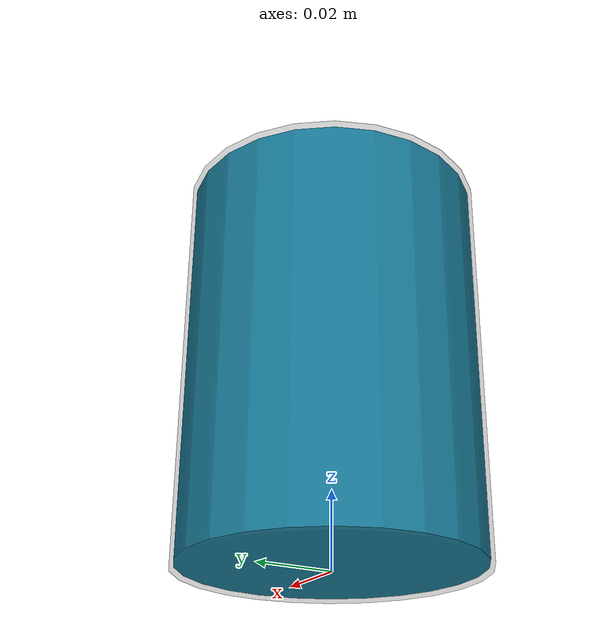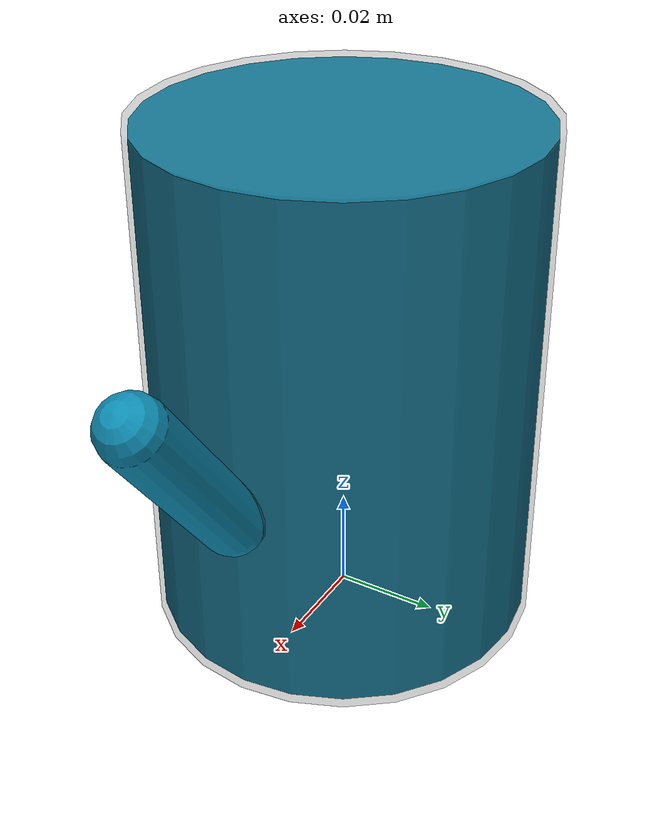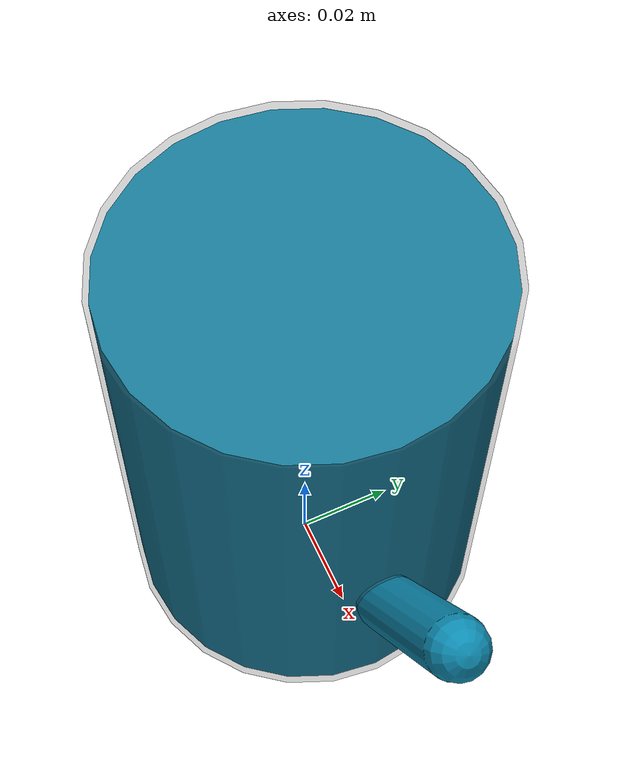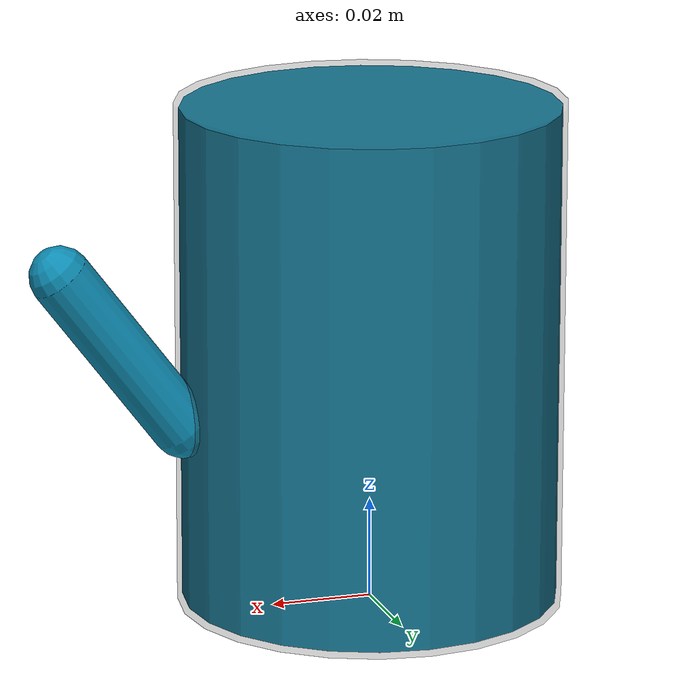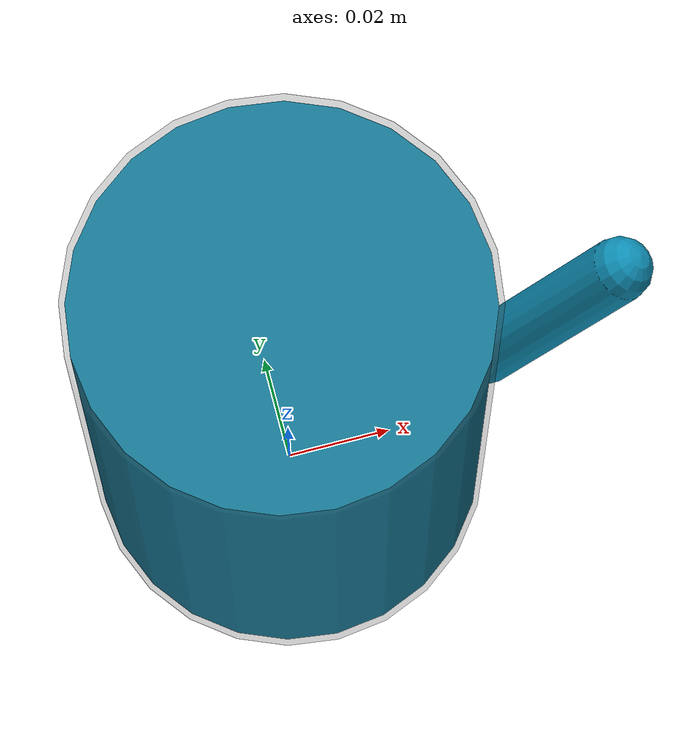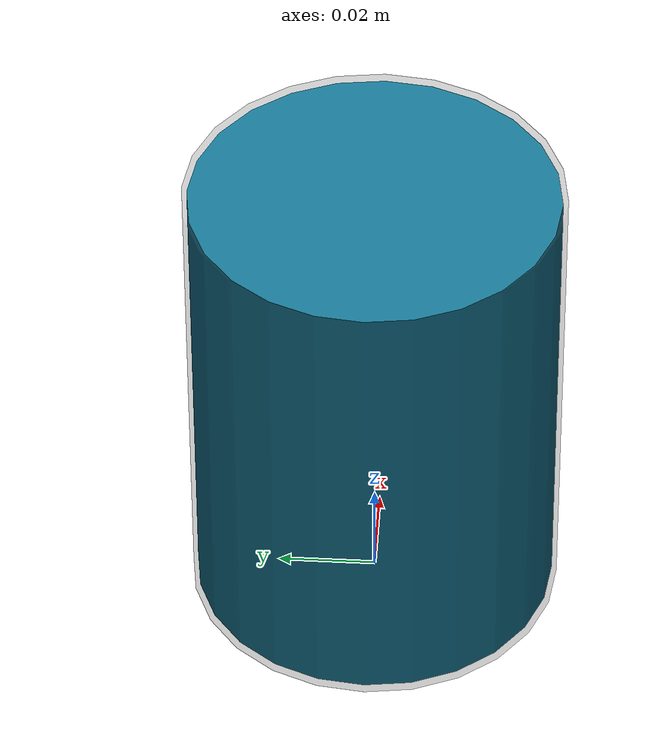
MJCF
<mujoco model="ycb_b_cups">
  <compiler autolimits="true"/>
  <default>
    <geom friction="0.9 0.01 0.001" condim="3" solref="0.008 1" solimp="0.90 0.95 0.001" margin="0.001"/>
  </default>
  <worldbody>
    <body name="ycb_b_cups" pos="0 0 0.050">
      <freejoint/>
      <inertial pos="0 0 0" mass="0.12" diaginertia="0.00012 0.00012 0.000074"/>
      <geom name="ycb_b_cups_collision" type="cylinder" size="0.038 0.050" rgba="0.25 0.25 0.25 0.25"/>
      <geom name="ycb_b_cups_visual" type="cylinder" size="0.037 0.049" contype="0" conaffinity="0" group="1" rgba="0.05 0.55 0.70 0.92"/>
      <geom name="ycb_b_cups_handle_visual" type="capsule" fromto="0.038 0 -0.012 0.062 0 0.020" size="0.006" contype="0" conaffinity="0" group="1" rgba="0.05 0.55 0.70 0.92"/>
    </body>
  </worldbody>
</mujoco>
